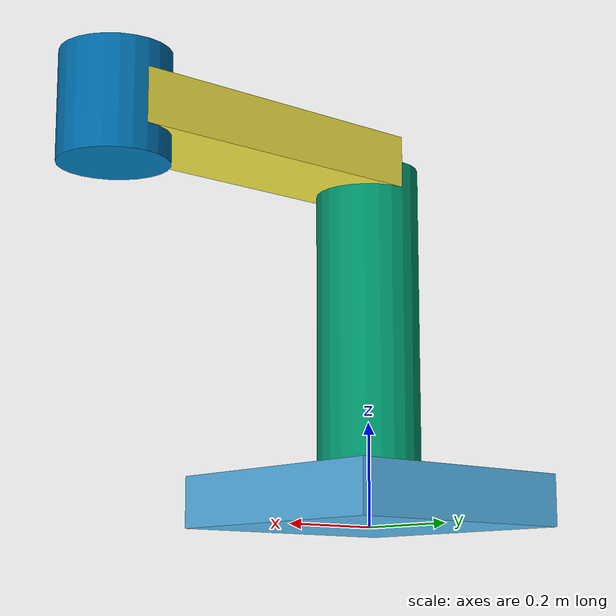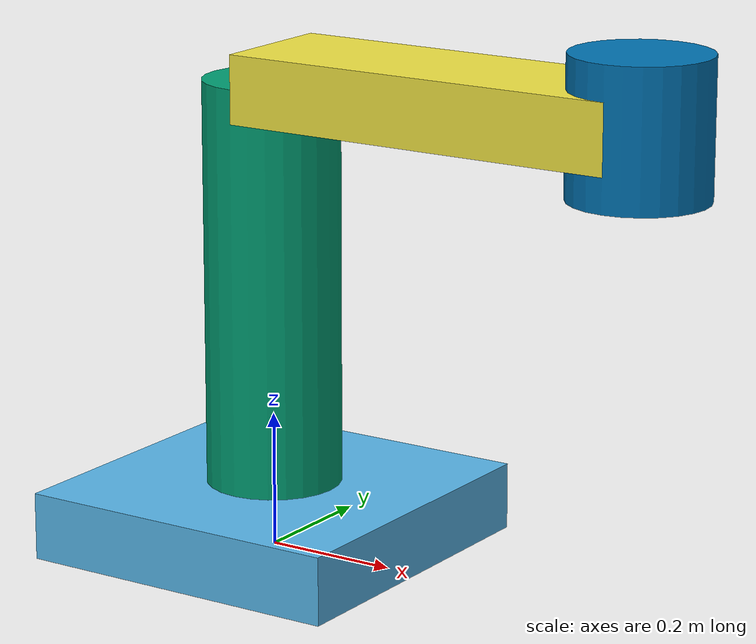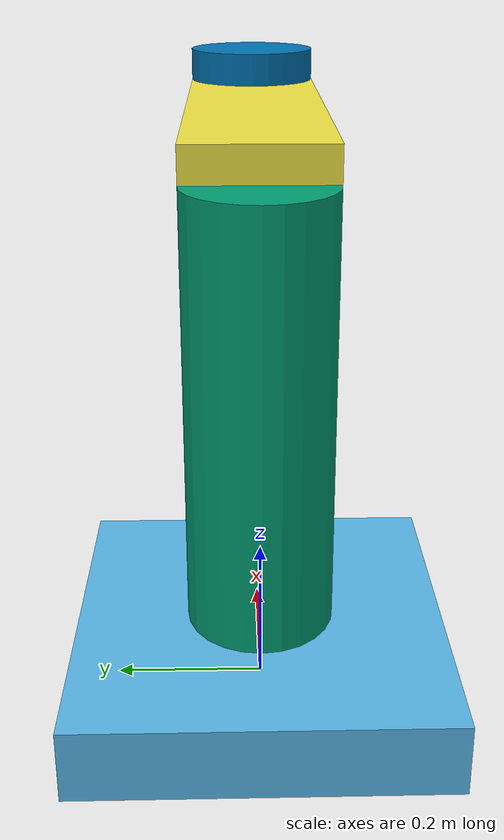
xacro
<?xml version="1.0"?>
<robot name="3dof_robot" xmlns:xacro="http://www.ros.org/wiki/xacro">

    <xacro:property name="d1" value=".6" />
    <xacro:property name="a2" value=".6" />
    <xacro:property name="a3" value=".6" />
    <xacro:property name="d4" value=".3" />

    <xacro:property name="cyl_joint_r" value=".1" />
    <xacro:property name="cyl_joint_l" value=".2" />

    <xacro:property name="link_r" value=".1" />

    <xacro:property name="base_link_l" value=".5" />
    <xacro:property name="base_link_w" value=".5" />
    <xacro:property name="base_link_h" value="0.1" />

    <xacro:property name="link1_l" value="${d1}" />
    <xacro:property name="link1_r" value="${link_r}" />
    <xacro:property name="link1_theta" value="0" />
    <xacro:property name="link1_d" value="${base_link_h}" />
    <xacro:property name="link1_a" value="0" />
    <xacro:property name="link1_alpha" value="0" />

    <xacro:property name="link2_l" value="${a2}" />
    <xacro:property name="link2_w" value="${link_r *2}" />
    <xacro:property name="link2_h" value="${link_r}" />
    <xacro:property name="link2_theta" value="0" />
    <xacro:property name="link2_d" value="${link1_l}" />
    <xacro:property name="link2_a" value="0" />
    <xacro:property name="link2_alpha" value="0" />

    <xacro:property name="link3_l" value="${cyl_joint_l}" />
    <xacro:property name="link3_r" value="${cyl_joint_r}" />
    <xacro:property name="link3_theta" value="0" />
    <xacro:property name="link3_d" value="0" />
    <xacro:property name="link3_a" value="${a2}" />
    <xacro:property name="link3_alpha" value="0" />

    <xacro:property name="ee_w" value="0.4" />
    <xacro:property name="ee_h" value="0.05" />
    <xacro:property name="ee_limit_lower" value="0" />
    <xacro:property name="ee_limit_upper" value=".5" />

    <xacro:macro name="inertial_box" params="mass x y z *origin">
        <inertial>
            <xacro:insert_block name="origin"/>
            <mass value="${mass}" />
            <inertia ixx="${(1/12) * mass * (y*y+z*z)}" ixy="0.0" ixz="0.0"
                    iyy="${(1/12) * mass * (x*x+z*z)}" iyz="0.0"
                    izz="${(1/12) * mass * (x*x+y*y)}" />
        </inertial>
    </xacro:macro>

    <xacro:macro name="inertial_cylinder" params="mass length radius *origin">
        <inertial>
            <xacro:insert_block name="origin"/>
            <mass value="${mass}" />
            <inertia ixx="${(1/12) * mass * (3*radius*radius + length*length)}" ixy="0.0" ixz="0.0"
                    iyy="${(1/12) * mass * (3*radius*radius + length*length)}" iyz="0.0"
                    izz="${(1/2) * mass * (radius*radius)}" />
        </inertial>
    </xacro:macro>

    <link name="world_link"/>

    <joint name="world_to_base" type="fixed">
    <parent link="world_link"/>
    <child link="base_link"/>
    <origin xyz="0 0 0" rpy="0 0 0"/>
    </joint>

    <link name="base_link">
    <visual>
        <origin rpy="0 0 0" xyz="0 0 ${base_link_h/2}" />
        <geometry>
            <box size="${base_link_l} ${base_link_w} ${base_link_h}" />
        </geometry>
    </visual>
    <collision>
        <origin rpy="0 0 0" xyz="0 0 ${base_link_h/2}" />
        <geometry>
            <box size="${base_link_l} ${base_link_w} ${base_link_h}" />
        </geometry>
    </collision>
    <xacro:inertial_box mass="10" x="${base_link_l}" y="${base_link_w}" z="${base_link_h}">
        <origin rpy="0 0 0" xyz="0 0 ${base_link_h/2}" />
    </xacro:inertial_box>
    </link>

    <joint name="joint1" type="continuous">
        <parent link="base_link" />
        <child link="link1" />
        <origin rpy="0 0 0" xyz="0 0 ${link1_d}" />
        <axis xyz="0 0 1" />
    </joint>

    <link name="link1">
        <visual>
            <origin rpy="0 0 0" xyz="0 0 ${link1_l/2}" />
            <geometry>
                <cylinder length="${link1_l}" radius="${link1_r}" />
            </geometry>
        </visual>
        <collision>
            <origin rpy="0 0 0" xyz="0 0 ${link1_l/2}" />
            <geometry>
                <cylinder length="${link1_l}" radius="${link1_r}" />
            </geometry>
        </collision>
        <xacro:inertial_cylinder mass="10" length="${link1_l}" radius="${link1_r}">
            <origin rpy="0 0 0" xyz="0 0 ${link1_l/2}" />
        </xacro:inertial_cylinder>
    </link>

    <link name="link2">
        <visual>
            <origin rpy="0 0 0" xyz="${link2_l/2} 0 0" />
            <geometry>
                <box size="${link2_l} ${link2_w} ${link2_h}" />
            </geometry>
        </visual>
        <collision>
            <origin rpy="0 0 0" xyz="${link2_l/2} 0 0" />
            <geometry>
                <box size="${link2_l} ${link2_w} ${link2_h}" />
            </geometry>
        </collision>
        <xacro:inertial_box mass="0.01" x="${link2_l}" y="${link2_w}" z="${link2_h}">
            <origin rpy="0 0 0" xyz="${link2_l/2} 0 0" />
        </xacro:inertial_box>
    </link>

    <joint name="link1_to_link2" type="fixed">
        <parent link="link1" />
        <child link="link2" />
        <origin rpy="${link2_theta} 0 ${link2_alpha}" xyz="${link2_a} 0 ${link2_d}" />
    </joint>

    <link name="link3">
        <visual>
            <geometry>
                <cylinder length="${link3_l}" radius="${link3_r}" />
            </geometry>
        </visual>
        <collision>
            <geometry>
                <cylinder length="${link3_l}" radius="${link3_r}" />
            </geometry>
        </collision>
        <inertial>
            <mass value="0.01" />
            <inertia ixx="1e-3" ixy="0.0" ixz="0.0" iyy="1e-3" iyz="0.0" izz="1e-3" />
        </inertial>
    </link>

    <joint name="joint2" type="revolute">
        <parent link="link2" />
        <child link="link3" />
        <origin rpy="${link3_theta} 0 ${link3_alpha}" xyz="${link3_a} 0 ${link3_d}" />
        <limit lower="${-pi/2}" upper="${pi/2}" effort="100" velocity="1.0" />
        <axis xyz="0 0 1" />
    </joint>

    <ros2_control name="GazeboSystem" type="system">
        <hardware>
            <plugin>gazebo_ros2_control/GazeboSystem</plugin>
        </hardware>
        <joint name="joint1">
            <command_interface name="position" />
            <state_interface name="position"/>
            <state_interface name="velocity"/>
        </joint>
        <joint name="joint2">
            <command_interface name="position" />
            <state_interface name="position"/>
            <state_interface name="velocity"/>
        </joint>
    </ros2_control>

    <gazebo>
        <plugin filename="libgazebo_ros2_control.so" name="gazebo_ros2_control">
        <parameters>$(find assign1)/config/joints.yaml</parameters>
        </plugin>
    </gazebo>
</robot>
